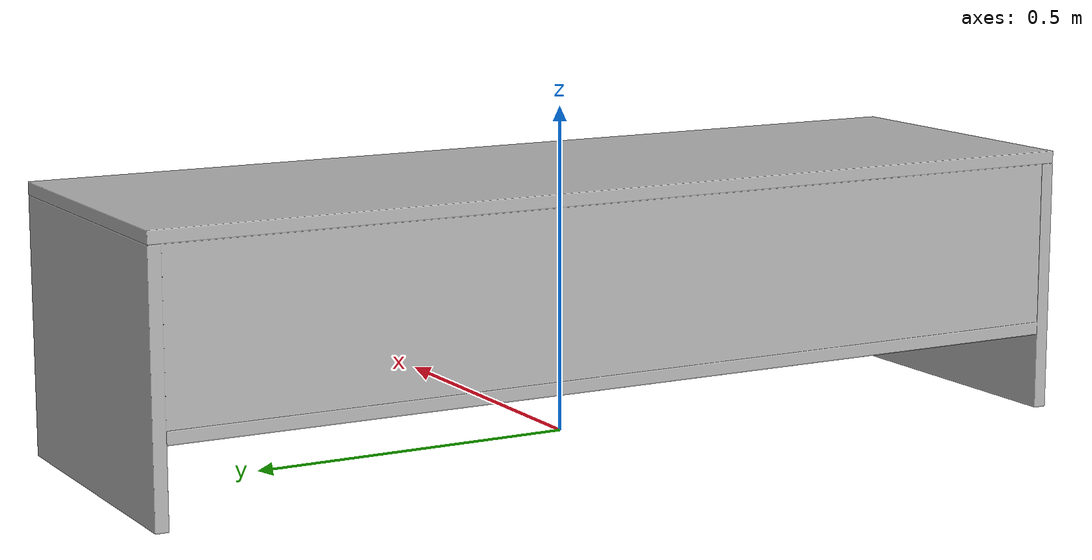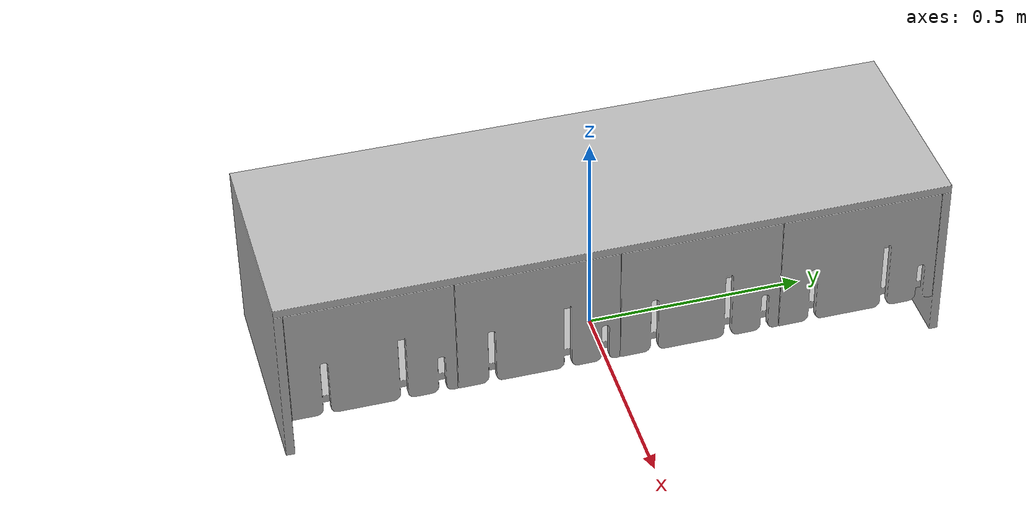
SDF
<?xml version='1.0'?>
<sdf version='1.4'>
  <model name='s__702'>
    <pose>0 0 0 0 0 0</pose>
    <static>true</static>
    <link name='link'>
      <collision name='collision'>
        <pose>0 0 0 0 0 0</pose>
        <geometry>
          <box>
            <size>0.48 1.5 2</size>
          </box>
        </geometry>
      </collision>
      <visual name='visual'>
        <pose>0 0 0 0 0 0</pose>
        <geometry>
          <mesh><uri>model://s__702/s__702.dae</uri></mesh>
        </geometry>
      </visual>
    </link>
  </model>
</sdf>
